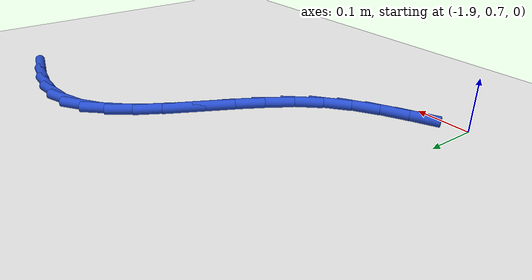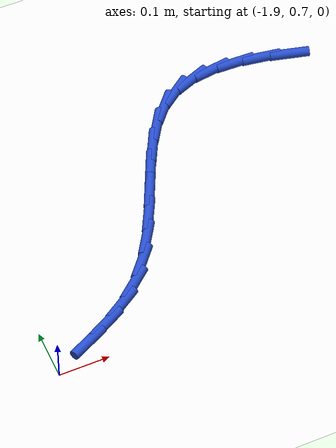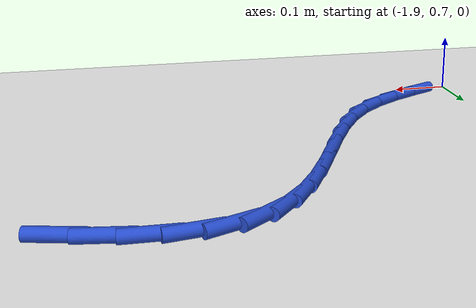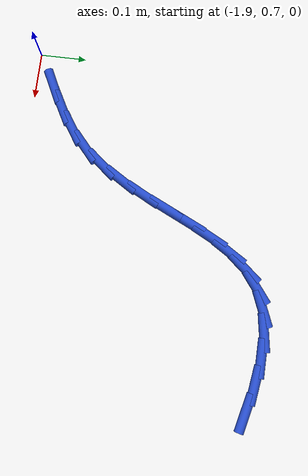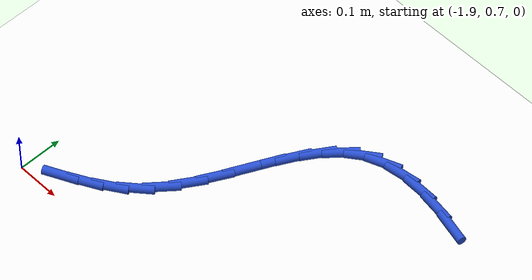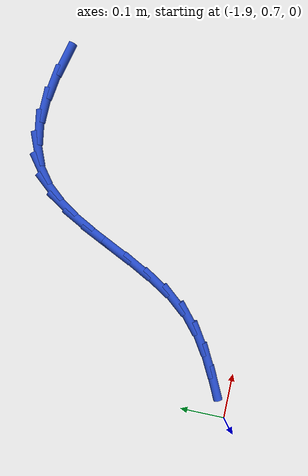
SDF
<sdf version="1.6">
 <world name="default">
  <model name="ground_plane">
   <static>1</static>
   <link name="link">
    <collision name="collision">
     <geometry><plane><normal>0 0 1</normal><size>100 100</size></plane></geometry>
     <surface><friction><ode><mu>100</mu><mu2>50</mu2></ode></friction></surface>
    </collision>
    <visual name="visual">
     <cast_shadows>0</cast_shadows>
     <geometry><plane><normal>0 0 1</normal><size>100 100</size></plane></geometry>
     <material>
      <script><uri>file://media/materials/scripts/gazebo.material</uri><name>Gazebo/WhiteGlow</name></script>
     </material>
    </visual>
   </link>
  </model>
  <model name="line">
   <link name="link_34">
    <pose>-1.1857484639909872 1.217519154300365 0.01 0 1.57 -0.2514793703086678</pose>
    <collision name="collision">
     <geometry><cylinder><radius>0.01</radius><length>0.08</length></cylinder></geometry>
    </collision>
    <visual name="visual">
     <material>
      <script><name>Gazebo/Blue</name><uri>file://media/materials/scripts/gazebo.material</uri></script>
     </material>
     <geometry><cylinder><radius>0.01</radius><length>0.08</length></cylinder></geometry>
    </visual>
   </link>
   <link name="link_35">
    <pose>-1.2413885548849541 1.2318141142218775 0.01 0 1.57 -0.15796301768268106</pose>
    <collision name="collision">
     <geometry><cylinder><radius>0.01</radius><length>0.08</length></cylinder></geometry>
    </collision>
    <visual name="visual">
     <material>
      <script><name>Gazebo/Blue</name><uri>file://media/materials/scripts/gazebo.material</uri></script>
     </material>
     <geometry><cylinder><radius>0.01</radius><length>0.08</length></cylinder></geometry>
    </visual>
   </link>
   <link name="link_36">
    <pose>-1.295381030445552 1.2404145817307837 0.01 0 1.57 -0.031021615399808883</pose>
    <collision name="collision">
     <geometry><cylinder><radius>0.01</radius><length>0.08</length></cylinder></geometry>
    </collision>
    <visual name="visual">
     <material>
      <script><name>Gazebo/Blue</name><uri>file://media/materials/scripts/gazebo.material</uri></script>
     </material>
     <geometry><cylinder><radius>0.01</radius><length>0.08</length></cylinder></geometry>
    </visual>
   </link>
   <link name="link_37">
    <pose>-1.3465819482771944 1.2420034266145668 0.01 0 1.57 0.1416421298975791</pose>
    <collision name="collision">
     <geometry><cylinder><radius>0.01</radius><length>0.08</length></cylinder></geometry>
    </collision>
    <visual name="visual">
     <material>
      <script><name>Gazebo/Blue</name><uri>file://media/materials/scripts/gazebo.material</uri></script>
     </material>
     <geometry><cylinder><radius>0.01</radius><length>0.08</length></cylinder></geometry>
    </visual>
   </link>
   <link name="link_38">
    <pose>-1.3938473659842934 1.2352635186607106 0.01 0 1.57 0.37048217148772666</pose>
    <collision name="collision">
     <geometry><cylinder><radius>0.01</radius><length>0.08</length></cylinder></geometry>
    </collision>
    <visual name="visual">
     <material>
      <script><name>Gazebo/Blue</name><uri>file://media/materials/scripts/gazebo.material</uri></script>
     </material>
     <geometry><cylinder><radius>0.01</radius><length>0.08</length></cylinder></geometry>
    </visual>
   </link>
   <link name="link_39">
    <pose>-1.436033341171262 1.2188777276566982 0.01 0 1.57 0.6376230430593908</pose>
    <collision name="collision">
     <geometry><cylinder><radius>0.01</radius><length>0.08</length></cylinder></geometry>
    </collision>
    <visual name="visual">
     <material>
      <script><name>Gazebo/Blue</name><uri>file://media/materials/scripts/gazebo.material</uri></script>
     </material>
     <geometry><cylinder><radius>0.01</radius><length>0.08</length></cylinder></geometry>
    </visual>
   </link>
   <link name="link_40">
    <pose>-1.4723301955175832 1.1919869951354516 0.01 0 1.57 0.8556333521397559</pose>
    <collision name="collision">
     <geometry><cylinder><radius>0.01</radius><length>0.08</length></cylinder></geometry>
    </collision>
    <visual name="visual">
     <material>
      <script><name>Gazebo/Blue</name><uri>file://media/materials/scripts/gazebo.material</uri></script>
     </material>
     <geometry><cylinder><radius>0.01</radius><length>0.08</length></cylinder></geometry>
    </visual>
   </link>
   <link name="link_41">
    <pose>-1.503584659787453 1.1560021870913713 0.01 0 1.57 1.0002856444186612</pose>
    <collision name="collision">
     <geometry><cylinder><radius>0.01</radius><length>0.08</length></cylinder></geometry>
    </collision>
    <visual name="visual">
     <material>
      <script><name>Gazebo/Blue</name><uri>file://media/materials/scripts/gazebo.material</uri></script>
     </material>
     <geometry><cylinder><radius>0.01</radius><length>0.08</length></cylinder></geometry>
    </visual>
   </link>
   <link name="link_42">
    <pose>-1.5311556028205424 1.1130359978026474 0.01 0 1.57 1.0851682611648537</pose>
    <collision name="collision">
     <geometry><cylinder><radius>0.01</radius><length>0.08</length></cylinder></geometry>
    </collision>
    <visual name="visual">
     <material>
      <script><name>Gazebo/Blue</name><uri>file://media/materials/scripts/gazebo.material</uri></script>
     </material>
     <geometry><cylinder><radius>0.01</radius><length>0.08</length></cylinder></geometry>
    </visual>
   </link>
   <link name="link_43">
    <pose>-1.5564020439370692 1.065201327764323 0.01 0 1.57 1.1233142922950623</pose>
    <collision name="collision">
     <geometry><cylinder><radius>0.01</radius><length>0.08</length></cylinder></geometry>
    </collision>
    <visual name="visual">
     <material>
      <script><name>Gazebo/Blue</name><uri>file://media/materials/scripts/gazebo.material</uri></script>
     </material>
     <geometry><cylinder><radius>0.01</radius><length>0.08</length></cylinder></geometry>
    </visual>
   </link>
   <link name="link_44">
    <pose>-1.580683002457248 1.01461107747144 0.01 0 1.57 1.1219654271986914</pose>
    <collision name="collision">
     <geometry><cylinder><radius>0.01</radius><length>0.08</length></cylinder></geometry>
    </collision>
    <visual name="visual">
     <material>
      <script><name>Gazebo/Blue</name><uri>file://media/materials/scripts/gazebo.material</uri></script>
     </material>
     <geometry><cylinder><radius>0.01</radius><length>0.08</length></cylinder></geometry>
    </visual>
   </link>
   <link name="link_45">
    <pose>-1.6053574977012963 0.9633781474190437 0.01 0 1.57 1.082609518846327</pose>
    <collision name="collision">
     <geometry><cylinder><radius>0.01</radius><length>0.08</length></cylinder></geometry>
    </collision>
    <visual name="visual">
     <material>
      <script><name>Gazebo/Blue</name><uri>file://media/materials/scripts/gazebo.material</uri></script>
     </material>
     <geometry><cylinder><radius>0.01</radius><length>0.08</length></cylinder></geometry>
    </visual>
   </link>
   <link name="link_46">
    <pose>-1.6317845489894307 0.9136154381021762 0.01 0 1.57 1.00173372946506</pose>
    <collision name="collision">
     <geometry><cylinder><radius>0.01</radius><length>0.08</length></cylinder></geometry>
    </collision>
    <visual name="visual">
     <material>
      <script><name>Gazebo/Blue</name><uri>file://media/materials/scripts/gazebo.material</uri></script>
     </material>
     <geometry><cylinder><radius>0.01</radius><length>0.08</length></cylinder></geometry>
    </visual>
   </link>
   <link name="link_47">
    <pose>-1.6613231756418678 0.8674358500158817 0.01 0 1.57 0.8720955959826324</pose>
    <collision name="collision">
     <geometry><cylinder><radius>0.01</radius><length>0.08</length></cylinder></geometry>
    </collision>
    <visual name="visual">
     <material>
      <script><name>Gazebo/Blue</name><uri>file://media/materials/scripts/gazebo.material</uri></script>
     </material>
     <geometry><cylinder><radius>0.01</radius><length>0.08</length></cylinder></geometry>
    </visual>
   </link>
   <link name="link_48">
    <pose>-1.6953323087583152 0.8269521494269101 0.01 0 1.57 0.7059501299019851</pose>
    <collision name="collision">
     <geometry><cylinder><radius>0.01</radius><length>0.08</length></cylinder></geometry>
    </collision>
    <visual name="visual">
     <material>
      <script><name>Gazebo/Blue</name><uri>file://media/materials/scripts/gazebo.material</uri></script>
     </material>
     <geometry><cylinder><radius>0.01</radius><length>0.08</length></cylinder></geometry>
    </visual>
   </link>
   <link name="link_49">
    <pose>-1.7346284323983652 0.7934517645809668 0.01 0 1.57 0.5712732659725923</pose>
    <collision name="collision">
     <geometry><cylinder><radius>0.01</radius><length>0.08</length></cylinder></geometry>
    </collision>
    <visual name="visual">
     <material>
      <script><name>Gazebo/Blue</name><uri>file://media/materials/scripts/gazebo.material</uri></script>
     </material>
     <geometry><cylinder><radius>0.01</radius><length>0.08</length></cylinder></geometry>
    </visual>
   </link>
   <link name="link_50">
    <pose>-1.7782021560760837 0.7654440392793062 0.01 0 1.57 0.4868002507982963</pose>
    <collision name="collision">
     <geometry><cylinder><radius>0.01</radius><length>0.08</length></cylinder></geometry>
    </collision>
    <visual name="visual">
     <material>
      <script><name>Gazebo/Blue</name><uri>file://media/materials/scripts/gazebo.material</uri></script>
     </material>
     <geometry><cylinder><radius>0.01</radius><length>0.08</length></cylinder></geometry>
    </visual>
   </link>
   <link name="link_51">
    <pose>-1.8246603291922283 0.740854422879947 0.01 0 1.57 0.451416437090773</pose>
    <collision name="collision">
     <geometry><cylinder><radius>0.01</radius><length>0.08</length></cylinder></geometry>
    </collision>
    <visual name="visual">
     <material>
      <script><name>Gazebo/Blue</name><uri>file://media/materials/scripts/gazebo.material</uri></script>
     </material>
     <geometry><cylinder><radius>0.01</radius><length>0.08</length></cylinder></geometry>
    </visual>
   </link>
  </model>
 </world>
</sdf>
